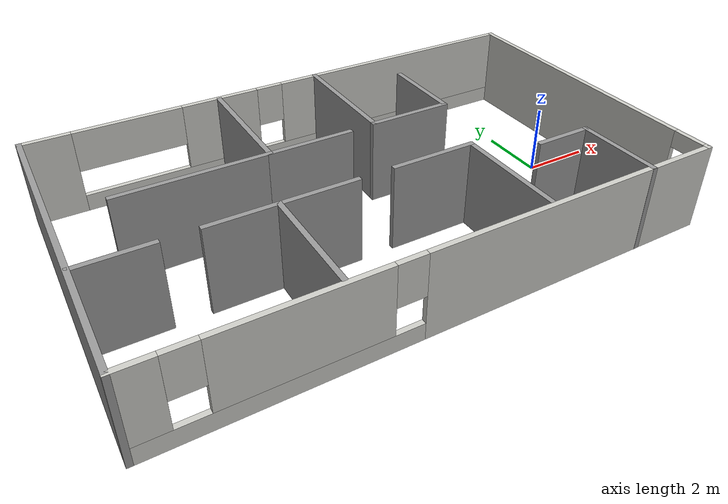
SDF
<?xml version='1.0'?>
<sdf version='1.7'>
  <model name='standard_room'>
    <pose>-6.05052 0.091884 0 0 -0 0</pose>
    <link name='Wall_23'>
      <pose>1e-06 4.55192 0 0 -0 0</pose>
      <visual name='Wall_23_Visual_0'>
        <pose>-7.17489 0 1.25 0 -0 0</pose>
        <geometry>
          <box>
            <size>1.40021 0.15 2.5</size>
          </box>
        </geometry>
        <material>
          <script>
            <uri>file://media/materials/scripts/gazebo.material</uri>
            <name>Gazebo/CeilingTiled</name>
          </script>
          <ambient>1 1 1 1</ambient>
        </material>
        <meta>
          <layer>0</layer>
        </meta>
      </visual>
      <collision name='Wall_23_Collision_0'>
        <geometry>
          <box>
            <size>1.40021 0.15 2.5</size>
          </box>
        </geometry>
        <pose>-7.17489 0 1.25 0 -0 0</pose>
      </collision>
      <visual name='Wall_23_Visual_1'>
        <pose>0.700106 0 0.25 0 -0 0</pose>
        <geometry>
          <box>
            <size>14.3498 0.15 0.5</size>
          </box>
        </geometry>
        <material>
          <script>
            <uri>file://media/materials/scripts/gazebo.material</uri>
            <name>Gazebo/CeilingTiled</name>
          </script>
          <ambient>1 1 1 1</ambient>
        </material>
        <meta>
          <layer>0</layer>
        </meta>
      </visual>
      <collision name='Wall_23_Collision_1'>
        <geometry>
          <box>
            <size>14.3498 0.15 0.5</size>
          </box>
        </geometry>
        <pose>0.700106 0 0.25 0 -0 0</pose>
      </collision>
      <visual name='Wall_23_Visual_2'>
        <pose>-2.22304 0 1.5 0 -0 0</pose>
        <geometry>
          <box>
            <size>2.3176 0.15 2</size>
          </box>
        </geometry>
        <material>
          <script>
            <uri>file://media/materials/scripts/gazebo.material</uri>
            <name>Gazebo/CeilingTiled</name>
          </script>
          <ambient>1 1 1 1</ambient>
        </material>
        <meta>
          <layer>0</layer>
        </meta>
      </visual>
      <collision name='Wall_23_Collision_2'>
        <geometry>
          <box>
            <size>2.3176 0.15 2</size>
          </box>
        </geometry>
        <pose>-2.22304 0 1.5 0 -0 0</pose>
      </collision>
      <visual name='Wall_23_Visual_3'>
        <pose>3.80538 0 1.5 0 -0 0</pose>
        <geometry>
          <box>
            <size>8.13924 0.15 2</size>
          </box>
        </geometry>
        <material>
          <script>
            <uri>file://media/materials/scripts/gazebo.material</uri>
            <name>Gazebo/CeilingTiled</name>
          </script>
          <ambient>1 1 1 1</ambient>
        </material>
        <meta>
          <layer>0</layer>
        </meta>
      </visual>
      <collision name='Wall_23_Collision_3'>
        <geometry>
          <box>
            <size>8.13924 0.15 2</size>
          </box>
        </geometry>
        <pose>3.80538 0 1.5 0 -0 0</pose>
      </collision>
      <visual name='Wall_23_Visual_4'>
        <pose>-4.92831 0 1.9 0 -0 0</pose>
        <geometry>
          <box>
            <size>3.09295 0.15 1.2</size>
          </box>
        </geometry>
        <material>
          <script>
            <uri>file://media/materials/scripts/gazebo.material</uri>
            <name>Gazebo/CeilingTiled</name>
          </script>
          <ambient>1 1 1 1</ambient>
        </material>
        <meta>
          <layer>0</layer>
        </meta>
      </visual>
      <collision name='Wall_23_Collision_4'>
        <geometry>
          <box>
            <size>3.09295 0.15 1.2</size>
          </box>
        </geometry>
        <pose>-4.92831 0 1.9 0 -0 0</pose>
      </collision>
      <visual name='Wall_23_Visual_5'>
        <pose>-0.664237 0 1.9 0 -0 0</pose>
        <geometry>
          <box>
            <size>0.8 0.15 1.2</size>
          </box>
        </geometry>
        <material>
          <script>
            <uri>file://media/materials/scripts/gazebo.material</uri>
            <name>Gazebo/CeilingTiled</name>
          </script>
          <ambient>1 1 1 1</ambient>
        </material>
        <meta>
          <layer>0</layer>
        </meta>
      </visual>
      <collision name='Wall_23_Collision_5'>
        <geometry>
          <box>
            <size>0.8 0.15 1.2</size>
          </box>
        </geometry>
        <pose>-0.664237 0 1.9 0 -0 0</pose>
      </collision>
    </link>
    <link name='Wall_24'>
      <pose>7.8 0.001918 0 0 -0 -1.5708</pose>
      <visual name='Wall_24_Visual_0'>
        <pose>-0.552229 0 1.25 0 -0 0</pose>
        <geometry>
          <box>
            <size>8.14554 0.15 2.5</size>
          </box>
        </geometry>
        <material>
          <script>
            <uri>file://media/materials/scripts/gazebo.material</uri>
            <name>Gazebo/CeilingTiled</name>
          </script>
          <ambient>1 1 1 1</ambient>
        </material>
        <meta>
          <layer>0</layer>
        </meta>
      </visual>
      <collision name='Wall_24_Collision_0'>
        <geometry>
          <box>
            <size>8.14554 0.15 2.5</size>
          </box>
        </geometry>
        <pose>-0.552229 0 1.25 0 -0 0</pose>
      </collision>
      <visual name='Wall_24_Visual_1'>
        <pose>4.52277 0 1.25 0 -0 0</pose>
        <geometry>
          <box>
            <size>0.204457 0.15 2.5</size>
          </box>
        </geometry>
        <material>
          <script>
            <uri>file://media/materials/scripts/gazebo.material</uri>
            <name>Gazebo/CeilingTiled</name>
          </script>
          <ambient>1 1 1 1</ambient>
        </material>
        <meta>
          <layer>0</layer>
        </meta>
      </visual>
      <collision name='Wall_24_Collision_1'>
        <geometry>
          <box>
            <size>0.204457 0.15 2.5</size>
          </box>
        </geometry>
        <pose>4.52277 0 1.25 0 -0 0</pose>
      </collision>
      <visual name='Wall_24_Visual_2'>
        <pose>3.97054 0 2.25 0 -0 0</pose>
        <geometry>
          <box>
            <size>0.9 0.15 0.5</size>
          </box>
        </geometry>
        <material>
          <script>
            <uri>file://media/materials/scripts/gazebo.material</uri>
            <name>Gazebo/CeilingTiled</name>
          </script>
          <ambient>1 1 1 1</ambient>
        </material>
        <meta>
          <layer>0</layer>
        </meta>
      </visual>
      <collision name='Wall_24_Collision_2'>
        <geometry>
          <box>
            <size>0.9 0.15 0.5</size>
          </box>
        </geometry>
        <pose>3.97054 0 2.25 0 -0 0</pose>
      </collision>
    </link>
    <link name='Wall_25'>
      <pose>1e-06 -4.54808 0 0 -0 3.14159</pose>
      <visual name='Wall_25_Visual_0'>
        <pose>-3.42322 0 1.25 0 -0 0</pose>
        <geometry>
          <box>
            <size>8.90355 0.15 2.5</size>
          </box>
        </geometry>
        <material>
          <script>
            <uri>file://media/materials/scripts/gazebo.material</uri>
            <name>Gazebo/CeilingTiled</name>
          </script>
          <ambient>1 1 1 1</ambient>
        </material>
        <meta>
          <layer>0</layer>
        </meta>
      </visual>
      <collision name='Wall_25_Collision_0'>
        <geometry>
          <box>
            <size>8.90355 0.15 2.5</size>
          </box>
        </geometry>
        <pose>-3.42322 0 1.25 0 -0 0</pose>
      </collision>
      <visual name='Wall_25_Visual_1'>
        <pose>4.45178 0 0.25 0 -0 0</pose>
        <geometry>
          <box>
            <size>6.84645 0.15 0.5</size>
          </box>
        </geometry>
        <material>
          <script>
            <uri>file://media/materials/scripts/gazebo.material</uri>
            <name>Gazebo/CeilingTiled</name>
          </script>
          <ambient>1 1 1 1</ambient>
        </material>
        <meta>
          <layer>0</layer>
        </meta>
      </visual>
      <collision name='Wall_25_Collision_1'>
        <geometry>
          <box>
            <size>6.84645 0.15 0.5</size>
          </box>
        </geometry>
        <pose>4.45178 0 0.25 0 -0 0</pose>
      </collision>
      <visual name='Wall_25_Visual_2'>
        <pose>3.95281 0 1.5 0 -0 0</pose>
        <geometry>
          <box>
            <size>4.24851 0.15 2</size>
          </box>
        </geometry>
        <material>
          <script>
            <uri>file://media/materials/scripts/gazebo.material</uri>
            <name>Gazebo/CeilingTiled</name>
          </script>
          <ambient>1 1 1 1</ambient>
        </material>
        <meta>
          <layer>0</layer>
        </meta>
      </visual>
      <collision name='Wall_25_Collision_2'>
        <geometry>
          <box>
            <size>4.24851 0.15 2</size>
          </box>
        </geometry>
        <pose>3.95281 0 1.5 0 -0 0</pose>
      </collision>
      <visual name='Wall_25_Visual_3'>
        <pose>7.37603 0 1.5 0 -0 0</pose>
        <geometry>
          <box>
            <size>0.99794 0.15 2</size>
          </box>
        </geometry>
        <material>
          <script>
            <uri>file://media/materials/scripts/gazebo.material</uri>
            <name>Gazebo/CeilingTiled</name>
          </script>
          <ambient>1 1 1 1</ambient>
        </material>
        <meta>
          <layer>0</layer>
        </meta>
      </visual>
      <collision name='Wall_25_Collision_3'>
        <geometry>
          <box>
            <size>0.99794 0.15 2</size>
          </box>
        </geometry>
        <pose>7.37603 0 1.5 0 -0 0</pose>
      </collision>
      <visual name='Wall_25_Visual_4'>
        <pose>1.42855 0 1.9 0 -0 0</pose>
        <geometry>
          <box>
            <size>0.8 0.15 1.2</size>
          </box>
        </geometry>
        <material>
          <script>
            <uri>file://media/materials/scripts/gazebo.material</uri>
            <name>Gazebo/CeilingTiled</name>
          </script>
          <ambient>1 1 1 1</ambient>
        </material>
        <meta>
          <layer>0</layer>
        </meta>
      </visual>
      <collision name='Wall_25_Collision_4'>
        <geometry>
          <box>
            <size>0.8 0.15 1.2</size>
          </box>
        </geometry>
        <pose>1.42855 0 1.9 0 -0 0</pose>
      </collision>
      <visual name='Wall_25_Visual_5'>
        <pose>6.47706 0 1.9 0 -0 0</pose>
        <geometry>
          <box>
            <size>0.8 0.15 1.2</size>
          </box>
        </geometry>
        <material>
          <script>
            <uri>file://media/materials/scripts/gazebo.material</uri>
            <name>Gazebo/CeilingTiled</name>
          </script>
          <ambient>1 1 1 1</ambient>
        </material>
        <meta>
          <layer>0</layer>
        </meta>
      </visual>
      <collision name='Wall_25_Collision_5'>
        <geometry>
          <box>
            <size>0.8 0.15 1.2</size>
          </box>
        </geometry>
        <pose>6.47706 0 1.9 0 -0 0</pose>
      </collision>
    </link>
    <link name='Wall_26'>
      <collision name='Wall_26_Collision'>
        <geometry>
          <box>
            <size>9.25 0.15 2.5</size>
          </box>
        </geometry>
        <pose>0 0 1.25 0 -0 0</pose>
      </collision>
      <visual name='Wall_26_Visual'>
        <pose>0 0 1.25 0 -0 0</pose>
        <geometry>
          <box>
            <size>9.25 0.15 2.5</size>
          </box>
        </geometry>
        <material>
          <script>
            <uri>file://media/materials/scripts/gazebo.material</uri>
            <name>Gazebo/Grey</name>
          </script>
          <ambient>1 1 1 1</ambient>
        </material>
        <meta>
          <layer>0</layer>
        </meta>
      </visual>
      <pose>-7.8 0.001918 0 0 -0 1.5708</pose>
    </link>
    <link name='Wall_28'>
      <collision name='Wall_28_Collision'>
        <geometry>
          <box>
            <size>2 0.15 2.5</size>
          </box>
        </geometry>
        <pose>0 0 1.25 0 -0 0</pose>
      </collision>
      <visual name='Wall_28_Visual'>
        <pose>0 0 1.25 0 -0 0</pose>
        <geometry>
          <box>
            <size>2 0.15 2.5</size>
          </box>
        </geometry>
        <material>
          <script>
            <uri>file://media/materials/scripts/gazebo.material</uri>
            <name>Gazebo/Grey</name>
          </script>
          <ambient>1 1 1 1</ambient>
        </material>
        <meta>
          <layer>0</layer>
        </meta>
      </visual>
      <pose>-6.84664 -1.32903 0 0 -0 0</pose>
    </link>
    <link name='Wall_32'>
      <collision name='Wall_32_Collision'>
        <geometry>
          <box>
            <size>2 0.15 2.5</size>
          </box>
        </geometry>
        <pose>0 0 1.25 0 -0 0</pose>
      </collision>
      <visual name='Wall_32_Visual'>
        <pose>0 0 1.25 0 -0 0</pose>
        <geometry>
          <box>
            <size>2 0.15 2.5</size>
          </box>
        </geometry>
        <material>
          <script>
            <uri>file://media/materials/scripts/gazebo.material</uri>
            <name>Gazebo/Grey</name>
          </script>
          <ambient>1 1 1 1</ambient>
        </material>
        <meta>
          <layer>0</layer>
        </meta>
      </visual>
      <pose>-3.92259 -1.31898 0 0 -0 0</pose>
    </link>
    <link name='Wall_33'>
      <collision name='Wall_33_Collision'>
        <geometry>
          <box>
            <size>3.25 0.15 2.5</size>
          </box>
        </geometry>
        <pose>0 0 1.25 0 -0 0</pose>
      </collision>
      <visual name='Wall_33_Visual'>
        <pose>0 0 1.25 0 -0 0</pose>
        <geometry>
          <box>
            <size>3.25 0.15 2.5</size>
          </box>
        </geometry>
        <material>
          <script>
            <uri>file://media/materials/scripts/gazebo.material</uri>
            <name>Gazebo/Grey</name>
          </script>
          <ambient>1 1 1 1</ambient>
        </material>
        <meta>
          <layer>0</layer>
        </meta>
      </visual>
      <pose>-2.99759 -2.86898 0 0 -0 -1.5708</pose>
    </link>
    <link name='Wall_35'>
      <collision name='Wall_35_Collision'>
        <geometry>
          <box>
            <size>2.25 0.15 2.5</size>
          </box>
        </geometry>
        <pose>0 0 1.25 0 -0 0</pose>
      </collision>
      <visual name='Wall_35_Visual'>
        <pose>0 0 1.25 0 -0 0</pose>
        <geometry>
          <box>
            <size>2.25 0.15 2.5</size>
          </box>
        </geometry>
        <material>
          <script>
            <uri>file://media/materials/scripts/gazebo.material</uri>
            <name>Gazebo/Grey</name>
          </script>
          <ambient>1 1 1 1</ambient>
        </material>
        <meta>
          <layer>0</layer>
        </meta>
      </visual>
      <pose>-1.94759 -1.31898 0 0 -0 0</pose>
    </link>
    <link name='Wall_37'>
      <collision name='Wall_37_Collision'>
        <geometry>
          <box>
            <size>2.5 0.15 2.5</size>
          </box>
        </geometry>
        <pose>0 0 1.25 0 -0 0</pose>
      </collision>
      <visual name='Wall_37_Visual'>
        <pose>0 0 1.25 0 -0 0</pose>
        <geometry>
          <box>
            <size>2.5 0.15 2.5</size>
          </box>
        </geometry>
        <material>
          <script>
            <uri>file://media/materials/scripts/gazebo.material</uri>
            <name>Gazebo/Grey</name>
          </script>
          <ambient>1 1 1 1</ambient>
        </material>
        <meta>
          <layer>0</layer>
        </meta>
      </visual>
      <pose>1.36455 -1.30149 0 0 -0 0</pose>
    </link>
    <link name='Wall_38'>
      <collision name='Wall_38_Collision'>
        <geometry>
          <box>
            <size>3.25 0.15 2.5</size>
          </box>
        </geometry>
        <pose>0 0 1.25 0 -0 0</pose>
      </collision>
      <visual name='Wall_38_Visual'>
        <pose>0 0 1.25 0 -0 0</pose>
        <geometry>
          <box>
            <size>3.25 0.15 2.5</size>
          </box>
        </geometry>
        <material>
          <script>
            <uri>file://media/materials/scripts/gazebo.material</uri>
            <name>Gazebo/Grey</name>
          </script>
          <ambient>1 1 1 1</ambient>
        </material>
        <meta>
          <layer>0</layer>
        </meta>
      </visual>
      <pose>2.53955 -2.85149 0 0 -0 -1.5708</pose>
    </link>
    <link name='Wall_41'>
      <collision name='Wall_41_Collision'>
        <geometry>
          <box>
            <size>4.25 0.15 2.5</size>
          </box>
        </geometry>
        <pose>0 0 1.25 0 -0 0</pose>
      </collision>
      <visual name='Wall_41_Visual'>
        <pose>0 0 1.25 0 -0 0</pose>
        <geometry>
          <box>
            <size>4.25 0.15 2.5</size>
          </box>
        </geometry>
        <material>
          <script>
            <uri>file://media/materials/scripts/gazebo.material</uri>
            <name>Gazebo/Grey</name>
          </script>
          <ambient>1 1 1 1</ambient>
        </material>
        <meta>
          <layer>0</layer>
        </meta>
      </visual>
      <pose>-4.30938 0.878746 0 0 -0 0</pose>
    </link>
    <link name='Wall_42'>
      <collision name='Wall_42_Collision'>
        <geometry>
          <box>
            <size>3.75 0.15 2.5</size>
          </box>
        </geometry>
        <pose>0 0 1.25 0 -0 0</pose>
      </collision>
      <visual name='Wall_42_Visual'>
        <pose>0 0 1.25 0 -0 0</pose>
        <geometry>
          <box>
            <size>3.75 0.15 2.5</size>
          </box>
        </geometry>
        <material>
          <script>
            <uri>file://media/materials/scripts/gazebo.material</uri>
            <name>Gazebo/Grey</name>
          </script>
          <ambient>1 1 1 1</ambient>
        </material>
        <meta>
          <layer>0</layer>
        </meta>
      </visual>
      <pose>-2.25938 2.67875 0 0 -0 1.5708</pose>
    </link>
    <link name='Wall_45'>
      <collision name='Wall_45_Collision'>
        <geometry>
          <box>
            <size>2.5 0.15 2.5</size>
          </box>
        </geometry>
        <pose>0 0 1.25 0 -0 0</pose>
      </collision>
      <visual name='Wall_45_Visual'>
        <pose>0 0 1.25 0 -0 0</pose>
        <geometry>
          <box>
            <size>2.5 0.15 2.5</size>
          </box>
        </geometry>
        <material>
          <script>
            <uri>file://media/materials/scripts/gazebo.material</uri>
            <name>Gazebo/Grey</name>
          </script>
          <ambient>1 1 1 1</ambient>
        </material>
        <meta>
          <layer>0</layer>
        </meta>
      </visual>
      <pose>-1.08438 0.878746 0 0 -0 0</pose>
    </link>
    <link name='Wall_50'>
      <collision name='Wall_50_Collision'>
        <geometry>
          <box>
            <size>3.75 0.15 2.5</size>
          </box>
        </geometry>
        <pose>0 0 1.25 0 -0 0</pose>
      </collision>
      <visual name='Wall_50_Visual'>
        <pose>0 0 1.25 0 -0 0</pose>
        <geometry>
          <box>
            <size>3.75 0.15 2.5</size>
          </box>
        </geometry>
        <material>
          <script>
            <uri>file://media/materials/scripts/gazebo.material</uri>
            <name>Gazebo/Grey</name>
          </script>
          <ambient>1 1 1 1</ambient>
        </material>
        <meta>
          <layer>0</layer>
        </meta>
      </visual>
      <pose>0.901621 2.73909 0 0 -0 1.5708</pose>
    </link>
    <link name='Wall_52'>
      <collision name='Wall_52_Collision'>
        <geometry>
          <box>
            <size>2.5 0.15 2.5</size>
          </box>
        </geometry>
        <pose>0 0 1.25 0 -0 0</pose>
      </collision>
      <visual name='Wall_52_Visual'>
        <pose>0 0 1.25 0 -0 0</pose>
        <geometry>
          <box>
            <size>2.5 0.15 2.5</size>
          </box>
        </geometry>
        <material>
          <script>
            <uri>file://media/materials/scripts/gazebo.material</uri>
            <name>Gazebo/Grey</name>
          </script>
          <ambient>1 1 1 1</ambient>
        </material>
        <meta>
          <layer>0</layer>
        </meta>
      </visual>
      <pose>2.07662 0.939087 0 0 -0 0</pose>
    </link>
    <link name='Wall_53'>
      <collision name='Wall_53_Collision'>
        <geometry>
          <box>
            <size>2.5 0.15 2.5</size>
          </box>
        </geometry>
        <pose>0 0 1.25 0 -0 0</pose>
      </collision>
      <visual name='Wall_53_Visual'>
        <pose>0 0 1.25 0 -0 0</pose>
        <geometry>
          <box>
            <size>2.5 0.15 2.5</size>
          </box>
        </geometry>
        <material>
          <script>
            <uri>file://media/materials/scripts/gazebo.material</uri>
            <name>Gazebo/Grey</name>
          </script>
          <ambient>1 1 1 1</ambient>
        </material>
        <meta>
          <layer>0</layer>
        </meta>
      </visual>
      <pose>3.25162 2.11409 0 0 -0 1.5708</pose>
    </link>
    <link name='Wall_55'>
      <collision name='Wall_55_Collision'>
        <geometry>
          <box>
            <size>2.5 0.15 2.5</size>
          </box>
        </geometry>
        <pose>0 0 1.25 0 -0 0</pose>
      </collision>
      <visual name='Wall_55_Visual'>
        <pose>0 0 1.25 0 -0 0</pose>
        <geometry>
          <box>
            <size>2.5 0.15 2.5</size>
          </box>
        </geometry>
        <material>
          <script>
            <uri>file://media/materials/scripts/gazebo.material</uri>
            <name>Gazebo/Grey</name>
          </script>
          <ambient>1 1 1 1</ambient>
        </material>
        <meta>
          <layer>0</layer>
        </meta>
      </visual>
      <pose>5.75199 -3.37692 0 0 -0 1.5708</pose>
    </link>
    <link name='Wall_56'>
      <collision name='Wall_56_Collision'>
        <geometry>
          <box>
            <size>1.75 0.15 2.5</size>
          </box>
        </geometry>
        <pose>0 0 1.25 0 -0 0</pose>
      </collision>
      <visual name='Wall_56_Visual'>
        <pose>0 0 1.25 0 -0 0</pose>
        <geometry>
          <box>
            <size>1.75 0.15 2.5</size>
          </box>
        </geometry>
        <material>
          <script>
            <uri>file://media/materials/scripts/gazebo.material</uri>
            <name>Gazebo/Grey</name>
          </script>
          <ambient>1 1 1 1</ambient>
        </material>
        <meta>
          <layer>0</layer>
        </meta>
      </visual>
      <pose>4.95199 -2.20192 0 0 -0 3.14159</pose>
    </link>
    <static>1</static>
  </model>
</sdf>
